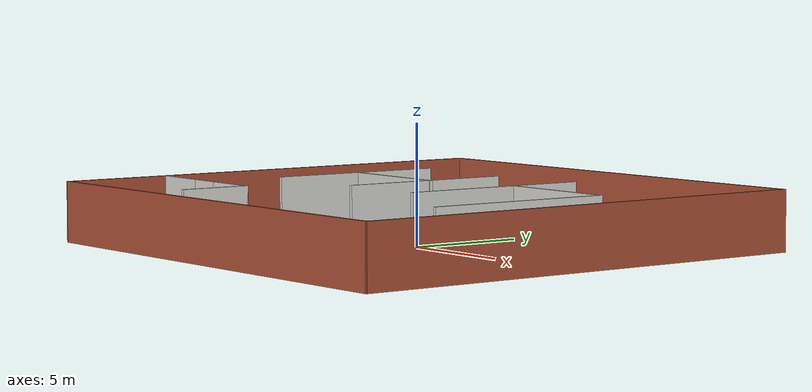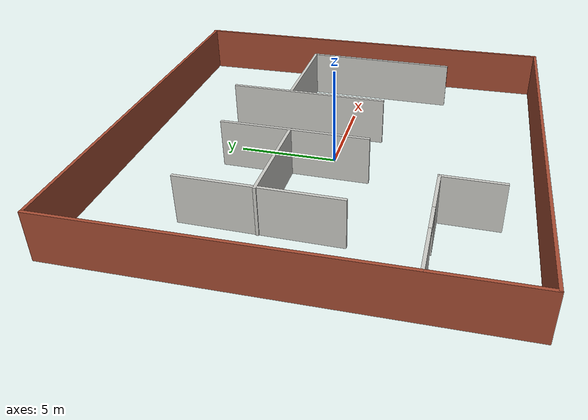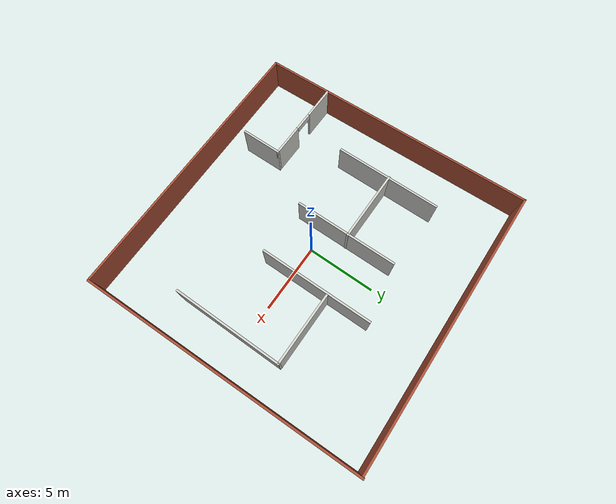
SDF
<?xml version='1.0'?>
<sdf version='1.7'>
  <model name='xaytuong'>
    <pose>-0.002338 0.142262 0 0 -0 0</pose>
    <link name='Wall_11'>
      <collision name='Wall_11_Collision'>
        <geometry>
          <box>
            <size>3 0.15 2.5</size>
          </box>
        </geometry>
        <pose>0 0 1.25 0 -0 0</pose>
      </collision>
      <visual name='Wall_11_Visual'>
        <pose>0 0 1.25 0 -0 0</pose>
        <geometry>
          <box>
            <size>3 0.15 2.5</size>
          </box>
        </geometry>
        <material>
          <script>
            <uri>file://media/materials/scripts/gazebo.material</uri>
            <name>Gazebo/CeilingTiled</name>
          </script>
          <ambient>0.435294 0.796078 0.67451 1</ambient>
        </material>
        <meta>
          <layer>0</layer>
        </meta>
      </visual>
      <pose>-3.94098 -7.1475 0 0 -0 -1.5708</pose>
    </link>
    <link name='Wall_14'>
      <collision name='Wall_14_Collision'>
        <geometry>
          <box>
            <size>5.25 0.15 2.5</size>
          </box>
        </geometry>
        <pose>0 0 1.25 0 -0 0</pose>
      </collision>
      <visual name='Wall_14_Visual'>
        <pose>0 0 1.25 0 -0 0</pose>
        <geometry>
          <box>
            <size>5.25 0.15 2.5</size>
          </box>
        </geometry>
        <material>
          <script>
            <uri>file://media/materials/scripts/gazebo.material</uri>
            <name>Gazebo/CeilingTiled</name>
          </script>
          <ambient>1 1 1 1</ambient>
        </material>
        <meta>
          <layer>0</layer>
        </meta>
      </visual>
      <pose>5.14835 2.84552 0 0 -0 0</pose>
    </link>
    <link name='Wall_17'>
      <collision name='Wall_17_Collision'>
        <geometry>
          <box>
            <size>8.25 0.15 2.5</size>
          </box>
        </geometry>
        <pose>0 0 1.25 0 -0 0</pose>
      </collision>
      <visual name='Wall_17_Visual'>
        <pose>0 0 1.25 0 -0 0</pose>
        <geometry>
          <box>
            <size>8.25 0.15 2.5</size>
          </box>
        </geometry>
        <material>
          <script>
            <uri>file://media/materials/scripts/gazebo.material</uri>
            <name>Gazebo/CeilingTiled</name>
          </script>
          <ambient>1 1 1 1</ambient>
        </material>
        <meta>
          <layer>0</layer>
        </meta>
      </visual>
      <pose>2.45878 1.91262 0 0 -0 -1.5708</pose>
    </link>
    <link name='Wall_19'>
      <collision name='Wall_19_Collision'>
        <geometry>
          <box>
            <size>7.75 0.15 2.5</size>
          </box>
        </geometry>
        <pose>0 0 1.25 0 -0 0</pose>
      </collision>
      <visual name='Wall_19_Visual'>
        <pose>0 0 1.25 0 -0 0</pose>
        <geometry>
          <box>
            <size>7.75 0.15 2.5</size>
          </box>
        </geometry>
        <material>
          <script>
            <uri>file://media/materials/scripts/gazebo.material</uri>
            <name>Gazebo/CeilingTiled</name>
          </script>
          <ambient>1 1 1 1</ambient>
        </material>
        <meta>
          <layer>0</layer>
        </meta>
      </visual>
      <pose>-6.61339 1.60433 0 0 -0 -1.5708</pose>
    </link>
    <link name='Wall_21'>
      <collision name='Wall_21_Collision'>
        <geometry>
          <box>
            <size>5.25 0.15 2.5</size>
          </box>
        </geometry>
        <pose>0 0 1.25 0 -0 0</pose>
      </collision>
      <visual name='Wall_21_Visual'>
        <pose>0 0 1.25 0 -0 0</pose>
        <geometry>
          <box>
            <size>5.25 0.15 2.5</size>
          </box>
        </geometry>
        <material>
          <script>
            <uri>file://media/materials/scripts/gazebo.material</uri>
            <name>Gazebo/CeilingTiled</name>
          </script>
          <ambient>1 1 1 1</ambient>
        </material>
        <meta>
          <layer>0</layer>
        </meta>
      </visual>
      <pose>-4.10991 1.68242 0 0 -0 0</pose>
    </link>
    <link name='Wall_23'>
      <collision name='Wall_23_Collision'>
        <geometry>
          <box>
            <size>7.5 0.15 2.5</size>
          </box>
        </geometry>
        <pose>0 0 1.25 0 -0 0</pose>
      </collision>
      <visual name='Wall_23_Visual'>
        <pose>0 0 1.25 0 -0 0</pose>
        <geometry>
          <box>
            <size>7.5 0.15 2.5</size>
          </box>
        </geometry>
        <material>
          <script>
            <uri>file://media/materials/scripts/gazebo.material</uri>
            <name>Gazebo/CeilingTiled</name>
          </script>
          <ambient>1 1 1 1</ambient>
        </material>
        <meta>
          <layer>0</layer>
        </meta>
      </visual>
      <pose>-1.5888 1.49672 0 0 -0 -1.5708</pose>
    </link>
    <link name='Wall_25'>
      <collision name='Wall_25_Collision'>
        <geometry>
          <box>
            <size>8 0.15 2.5</size>
          </box>
        </geometry>
        <pose>0 0 1.25 0 -0 0</pose>
      </collision>
      <visual name='Wall_25_Visual'>
        <pose>0 0 1.25 0 -0 0</pose>
        <geometry>
          <box>
            <size>8 0.15 2.5</size>
          </box>
        </geometry>
        <material>
          <script>
            <uri>file://media/materials/scripts/gazebo.material</uri>
            <name>Gazebo/CeilingTiled</name>
          </script>
          <ambient>1 1 1 1</ambient>
        </material>
        <meta>
          <layer>0</layer>
        </meta>
      </visual>
      <pose>7.69835 -1.07948 0 0 -0 -1.5708</pose>
    </link>
    <link name='Wall_3'>
      <collision name='Wall_3_Collision'>
        <geometry>
          <box>
            <size>20.4673 0.15 2.5</size>
          </box>
        </geometry>
        <pose>0 0 1.25 0 -0 0</pose>
      </collision>
      <visual name='Wall_3_Visual'>
        <pose>0 0 1.25 0 -0 0</pose>
        <geometry>
          <box>
            <size>20.4673 0.15 2.5</size>
          </box>
        </geometry>
        <material>
          <script>
            <uri>file://media/materials/scripts/gazebo.material</uri>
            <name>Gazebo/Bricks</name>
          </script>
          <ambient>1 1 1 1</ambient>
        </material>
        <meta>
          <layer>0</layer>
        </meta>
      </visual>
      <pose>-0.203556 10.1865 0 0 -0 0.011216</pose>
    </link>
    <link name='Wall_4'>
      <collision name='Wall_4_Collision'>
        <geometry>
          <box>
            <size>20.5185 0.15 2.5</size>
          </box>
        </geometry>
        <pose>0 0 1.25 0 -0 0</pose>
      </collision>
      <visual name='Wall_4_Visual'>
        <pose>0 0 1.25 0 -0 0</pose>
        <geometry>
          <box>
            <size>20.5185 0.15 2.5</size>
          </box>
        </geometry>
        <material>
          <script>
            <uri>file://media/materials/scripts/gazebo.material</uri>
            <name>Gazebo/Bricks</name>
          </script>
          <ambient>1 1 1 1</ambient>
        </material>
        <meta>
          <layer>0</layer>
        </meta>
      </visual>
      <pose>10.2116 0.171771 0 0 -0 -1.5508</pose>
    </link>
    <link name='Wall_5'>
      <collision name='Wall_5_Collision'>
        <geometry>
          <box>
            <size>20.4506 0.15 2.5</size>
          </box>
        </geometry>
        <pose>0 0 1.25 0 -0 0</pose>
      </collision>
      <visual name='Wall_5_Visual'>
        <pose>0 0 1.25 0 -0 0</pose>
        <geometry>
          <box>
            <size>20.4506 0.15 2.5</size>
          </box>
        </geometry>
        <material>
          <script>
            <uri>file://media/materials/scripts/gazebo.material</uri>
            <name>Gazebo/Bricks</name>
          </script>
          <ambient>1 1 1 1</ambient>
        </material>
        <meta>
          <layer>0</layer>
        </meta>
      </visual>
      <pose>0.21236 -10.2089 0 0 -0 -3.12731</pose>
    </link>
    <link name='Wall_6'>
      <collision name='Wall_6_Collision'>
        <geometry>
          <box>
            <size>20.5809 0.15 2.5</size>
          </box>
        </geometry>
        <pose>0 0 1.25 0 -0 0</pose>
      </collision>
      <visual name='Wall_6_Visual'>
        <pose>0 0 1.25 0 -0 0</pose>
        <geometry>
          <box>
            <size>20.5809 0.15 2.5</size>
          </box>
        </geometry>
        <material>
          <script>
            <uri>file://media/materials/scripts/gazebo.material</uri>
            <name>Gazebo/Bricks</name>
          </script>
          <ambient>1 1 1 1</ambient>
        </material>
        <meta>
          <layer>0</layer>
        </meta>
      </visual>
      <pose>-10.2028 -0.140656 0 0 -0 1.59158</pose>
    </link>
    <link name='Wall_9'>
      <pose>-6.99098 -5.7225 0 0 -0 0</pose>
      <visual name='Wall_9_Visual_0'>
        <pose>-1.89229 0 1.25 0 -0 0</pose>
        <geometry>
          <box>
            <size>2.46541 0.15 2.5</size>
          </box>
        </geometry>
        <material>
          <script>
            <uri>file://media/materials/scripts/gazebo.material</uri>
            <name>Gazebo/CeilingTiled</name>
          </script>
          <ambient>0.505882 0.239216 0.611765 1</ambient>
        </material>
        <meta>
          <layer>0</layer>
        </meta>
      </visual>
      <collision name='Wall_9_Collision_0'>
        <geometry>
          <box>
            <size>2.46541 0.15 2.5</size>
          </box>
        </geometry>
        <pose>-1.89229 0 1.25 0 -0 0</pose>
      </collision>
      <visual name='Wall_9_Visual_1'>
        <pose>1.92071 0 1.25 0 -0 0</pose>
        <geometry>
          <box>
            <size>2.40859 0.15 2.5</size>
          </box>
        </geometry>
        <material>
          <script>
            <uri>file://media/materials/scripts/gazebo.material</uri>
            <name>Gazebo/CeilingTiled</name>
          </script>
          <ambient>0.505882 0.239216 0.611765 1</ambient>
        </material>
        <meta>
          <layer>0</layer>
        </meta>
      </visual>
      <collision name='Wall_9_Collision_1'>
        <geometry>
          <box>
            <size>2.40859 0.15 2.5</size>
          </box>
        </geometry>
        <pose>1.92071 0 1.25 0 -0 0</pose>
      </collision>
      <visual name='Wall_9_Visual_2'>
        <pose>0.028412 0 2.25 0 -0 0</pose>
        <geometry>
          <box>
            <size>1.376 0.15 0.5</size>
          </box>
        </geometry>
        <material>
          <script>
            <uri>file://media/materials/scripts/gazebo.material</uri>
            <name>Gazebo/CeilingTiled</name>
          </script>
          <ambient>0.505882 0.239216 0.611765 1</ambient>
        </material>
        <meta>
          <layer>0</layer>
        </meta>
      </visual>
      <collision name='Wall_9_Collision_2'>
        <geometry>
          <box>
            <size>1.376 0.15 0.5</size>
          </box>
        </geometry>
        <pose>0.028412 0 2.25 0 -0 0</pose>
      </collision>
    </link>
    <static>1</static>
  </model>
</sdf>
